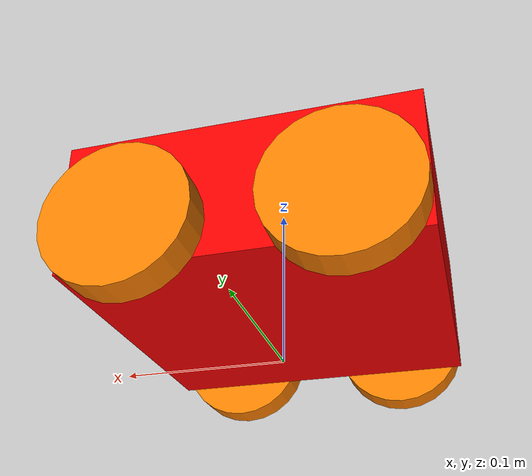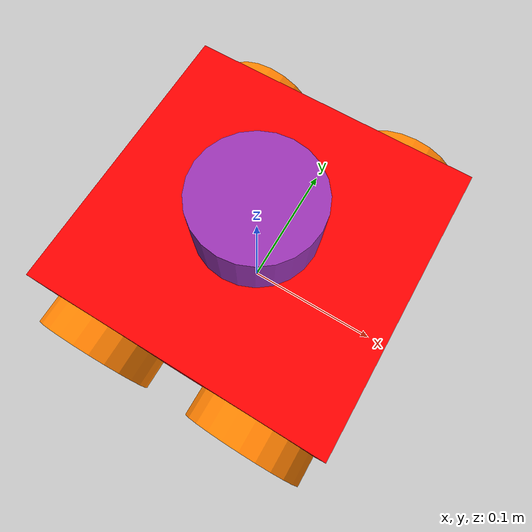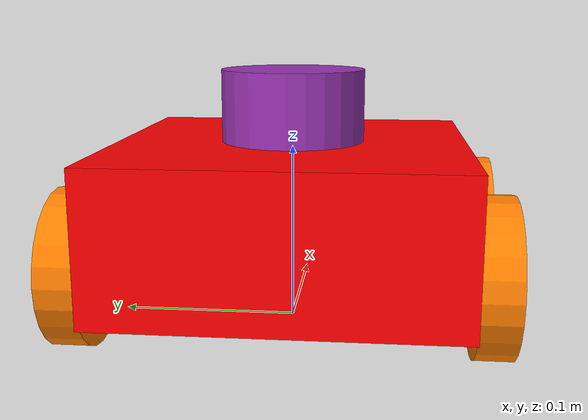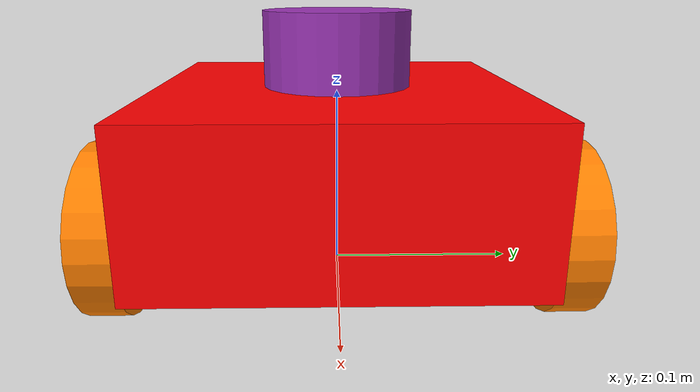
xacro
<?xml version="1.0"?>
<robot name="koala_bot" xmlns:xacro="http://ros.org/wiki/xacro">

  <xacro:include filename="$(find koala_description)/urdf/macros.xacro" />
  <xacro:include filename="$(find koala_description)/urdf/wheel.xacro" />
  <xacro:include filename="$(find koala_description)/urdf/colors.xacro" />
  <xacro:include filename="$(find koala_description)/urdf/lidar.xacro" />
  <xacro:include filename="$(find koala_description)/urdf/IMU.xacro" />

  <!-- Define robot constants -->
  <xacro:property name="base_width" value="0.194"/>
  <xacro:property name="base_length" value="0.200"/>
  <xacro:property name="base_height" value="0.081"/>
  <xacro:property name="base_mass" value="2.84"/>

  <xacro:property name="wheel_radius" value="0.042"/>
  <xacro:property name="wheel_width" value="0.020"/>
  <xacro:property name="wheel_ygap" value="0.00"/>
  <xacro:property name="wheel_zoff" value="-0.021"/>
  <xacro:property name="wheel_xoff" value="${wheel_radius}"/>
  <xacro:property name="wheel_mass" value="0.50"/>

  <xacro:property name="caster_xoff" value="0.00"/> <!-- distance between edge of caster to edge of base-->
  <xacro:property name="caster_mass" value="0.05"/>

<!-- Koala base :) -->
  <link name="body_link">
    <visual>
        <origin xyz="0.0 0.0 0.0" rpy="0.0 0.0 0.0"/>
        <geometry>
            <box size="${base_length} ${base_width} ${base_height}"/>
        </geometry>
        <material name="Red"/>
    </visual>
    <xacro:box_inertia m="${base_mass}" w="${base_length}" h="${base_width}" d="${base_height}"/>
    <collision>
      <origin xyz="0.0 0.0 0.0" rpy="0.0 0.0 0.0"/>
      <geometry>
        <box size="${base_length} ${base_width} ${base_height}"/>
      </geometry>

    </collision>
  </link>

<!-- Koala Footprint-->
  <link name="base_link"/>
  <joint name="base_joint" type="fixed">
    <parent link="base_link"/>
    <child link="body_link"/>
    <origin xyz="0.0 0.0 ${(wheel_radius-wheel_zoff)}" rpy="0 0 0"/>
  </joint>

<!-- Koala Wheels -->
  <xacro:wheel prefix="wheel_left_front" x_reflect="1" y_reflect="1" />
  <xacro:wheel prefix="wheel_right_front" x_reflect="1" y_reflect="-1" />
  <xacro:wheel prefix="wheel_left_rear" x_reflect="-1" y_reflect="1" />
  <xacro:wheel prefix="wheel_right_rear" x_reflect="-1" y_reflect="-1" />

  <!-- Koala lidar -->
  <xacro:lidar parent="body_link" x_pos="0.0" y_pos="0.0" z_pos="${base_height/2}" />

  <!-- Koala IMU -->
  <xacro:IMU parent="body_link" x_pos="0.0" y_pos="0.0" z_pos="${0}" />

  <!-- Gazebo simulation -->
  <gazebo>
    <plugin name='skid_steer_drive' filename='libgazebo_ros_diff_drive.so'>

      <update_rate>500</update_rate>
      <num_wheel_pairs>2</num_wheel_pairs>

      <left_joint>wheel_left_front_joint</left_joint>
      <right_joint>wheel_right_front_joint</right_joint>

      <left_joint>wheel_left_rear_joint</left_joint>
      <right_joint>wheel_right_rear_joint</right_joint>

      <wheel_separation>${base_width+2*wheel_ygap+wheel_width}</wheel_separation>
      <wheel_separation>${base_width+2*wheel_ygap+wheel_width}</wheel_separation>

      <wheel_diameter>${2*wheel_radius}</wheel_diameter>
      <wheel_diameter>${2*wheel_radius}</wheel_diameter>

      <max_wheel_torque>20</max_wheel_torque>
      <max_wheel_acceleration>1.0</max_wheel_acceleration>

      <publish_odom>true</publish_odom>
      <publish_odom_tf>false</publish_odom_tf>
      <publish_wheel_tf>true</publish_wheel_tf>

      <odometry_frame>odom</odometry_frame>
      <robot_base_frame>body_link</robot_base_frame>
    </plugin>
  </gazebo>
</robot>

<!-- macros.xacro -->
<robot name="koala_macros" xmlns:xacro="http://ros.org/wiki/xacro">
<!-- Define some commonly used intertial properties  -->
  <xacro:macro name="box_inertia" params="m w h d">
    <inertial>
      <origin xyz="0 0 0" rpy="0 0 0"/>
      <mass value="${m}"/>
      <inertia ixx="${(m/12) * (h*h + d*d)}" ixy="0.0" ixz="0.0" iyy="${(m/12) * (w*w + d*d)}" iyz="0.0" izz="${(m/12) * (w*w + h*h)}"/>
    </inertial>
  </xacro:macro>

  <xacro:macro name="cylinder_inertia" params="m r h roll">
    <inertial>
      <origin xyz="0 0 0" rpy="${roll} 0 0" />
      <mass value="${m}"/>
      <inertia ixx="${(m/12) * (3*r*r + h*h)}" ixy = "0" ixz = "0" iyy="${(m/12) * (3*r*r + h*h)}" iyz = "0" izz="${(m/2) * (r*r)}"/>
    </inertial>
  </xacro:macro>

  <xacro:macro name="sphere_inertia" params="m r">
    <inertial>
      <mass value="${m}"/>
      <inertia ixx="${(2/5) * m * (r*r)}" ixy="0.0" ixz="0.0" iyy="${(2/5) * m * (r*r)}" iyz="0.0" izz="${(2/5) * m * (r*r)}"/>
    </inertial>
  </xacro:macro>

</robot>

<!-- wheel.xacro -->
<robot name="koala_wheel" xmlns:xacro="http://ros.org/wiki/xacro">
  <xacro:macro name="wheel" params="prefix x_reflect y_reflect">
  <link name="${prefix}_link">
      <visual>
        <origin xyz="0 0 0" rpy="${pi/2} 0 0"/>
        <geometry>
            <cylinder radius="${wheel_radius}" length="${wheel_width}"/>
        </geometry>
        <material name="Orange"/>
      </visual>
      <xacro:cylinder_inertia m="${wheel_mass}" r="${wheel_radius}" h="${wheel_width}" roll="${pi/2}"/>
      <collision>
        <origin xyz="0 0 0" rpy="${pi/2} 0 0"/>
        <geometry>
          <cylinder radius="${wheel_radius}" length="${wheel_width}"/>
        </geometry>
      </collision>
    </link>

    <joint name="${prefix}_joint" type="continuous">
      <parent link="body_link"/>
      <child link="${prefix}_link"/>
      <origin xyz="${x_reflect*(base_length/2-wheel_xoff)} ${y_reflect*(base_width/2+wheel_ygap+wheel_width/2)} ${-base_height/2-wheel_zoff}" rpy="0 0 0"/>
      <axis xyz="0 1 0"/>
      <limit effort="1.5" velocity="24.0" />
      <dynamics damping="0.001" friction="0.001" />
    </joint>

  <gazebo reference="${prefix}_link">
    <collision>
          <surface>
            <friction>
              <ode>
                <mu>1</mu>
                <mu2>1</mu2>
                <slip1>0.035</slip1>
                <slip2>0</slip2>
                <fdir1>0 0 1</fdir1>
              </ode>
            </friction>
          </surface>
        </collision>
      <mu1 value="0.50"/>
      <mu2 value="3.0"/>
      <kp  value="10000000.0" />
      <kd  value="100.0" />
      <fdir1 value="0 0 1"/>
      <material>Gazebo/Black</material>
    </gazebo>
  </xacro:macro>
</robot>

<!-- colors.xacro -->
<robot xmlns:xacro="http://www.ros.org/wiki/xacro" name="colors_koala">

    <!-- Definicje kolorów -->
    <xacro:macro name="material_color" params="name r g b a">
        <material name="${name}">
            <color rgba="${r} ${g} ${b} ${a}"/>
        </material>
    </xacro:macro>

    <!-- Podstawowe kolory -->
    <xacro:material_color name="Red" r="1.0" g="0.0" b="0.0" a="1.0"/>
    <xacro:material_color name="Green" r="0.0" g="1.0" b="0.0" a="1.0"/>
    <xacro:material_color name="Blue" r="0.0" g="0.0" b="1.0" a="1.0"/>
    <xacro:material_color name="Yellow" r="1.0" g="1.0" b="0.0" a="1.0"/>
    <xacro:material_color name="Cyan" r="0.0" g="1.0" b="1.0" a="1.0"/>
    <xacro:material_color name="Magenta" r="1.0" g="0.0" b="1.0" a="1.0"/>
    <xacro:material_color name="White" r="1.0" g="1.0" b="1.0" a="1.0"/>
    <xacro:material_color name="Black" r="0.0" g="0.0" b="0.0" a="1.0"/>
    <xacro:material_color name="Gray" r="0.5" g="0.5" b="0.5" a="1.0"/>
    <xacro:material_color name="Orange" r="1.0" g="0.5" b="0.0" a="1.0"/>

</robot>

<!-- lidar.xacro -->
<robot name="koala_lidar" xmlns:xacro="http://ros.org/wiki/xacro">

<!-- The lidar macro is defined here -->
<xacro:property name="radius_lidar" value="0.04"/>
<xacro:property name="height_lidar" value="0.04"/>
<!-- The macro lidar is defined here -->
    <xacro:macro name="lidar" params="parent x_pos y_pos z_pos ">
        <link name="lidar_link">
            <visual>
            <geometry>
                <cylinder radius="${radius_lidar}" length="${height_lidar}"/>
            </geometry>
            </visual>
            <!-- Inertia properties -->
            <cylinder radius="${radius_lidar}" length="${height_lidar}"/>
            <!-- Collision properties -->
            <collision>
                <origin xyz="0 0 0" rpy="0 0 0"/>
                <geometry>
                    <cylinder radius="${radius_lidar}" length="${height_lidar}"/>
                </geometry>
            </collision>
        </link>
        <!-- Joint properties -->
        <joint name="lidar_joint" type="fixed">
            <parent link="${parent}"/>
            <child link="lidar_link"/>
            <origin xyz="${x_pos} ${y_pos} ${z_pos+height_lidar/2}" rpy="0 0 0"/>
        </joint>

        <!-- lidar properties -->
        <gazebo reference="lidar_link">
            <sensor name="koala_lidar" type="ray">
                <always_on>true</always_on>
                <update_rate>5</update_rate>
                <pose>0 0 0 0 0 0</pose>
                <ray>
                    <scan>
                        <horizontal>
                        <samples>1600</samples>
                        <resolution>1</resolution>
                        <min_angle>-${pi}</min_angle>
                        <max_angle>${pi}</max_angle>
                        </horizontal>
                    </scan>
                    <range>
                        <min>0.2</min>
                        <max>12</max>
                        <resolution>0.03</resolution>
                    </range>
                    <noise>
                        <type>gaussian</type>
                        <mean>0.0</mean>
                        <stddev>0.05</stddev>
                    </noise>
                </ray>
                <plugin name="lidar" filename="libgazebo_ros_ray_sensor.so">
                    <ros>
                        <argument>~/out:=scan</argument>
                    </ros>
                    <output_type>sensor_msgs/LaserScan</output_type>
                    <frame_name>lidar_link</frame_name>
                </plugin>
            </sensor>
            <!-- Material properties-->
            <material>Gazebo/Purple</material>
        </gazebo>
    </xacro:macro>
</robot>

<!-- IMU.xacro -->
<robot name="koala_IMU" xmlns:xacro="http://ros.org/wiki/xacro">

<!-- The macro camera is defined here -->
    <xacro:macro name="IMU" params="parent x_pos y_pos z_pos ">
        <link name="IMU_link"></link>
        <!-- Joint properties -->
        <joint name="IMU_joint" type="fixed">
            <parent link="${parent}"/>
            <child link="IMU_link"/>
            <origin xyz="${x_pos} ${y_pos} ${z_pos}" rpy="0 0 0"/>
        </joint>

        <!-- IMU properties -->
        <gazebo reference="IMU_link">
            <sensor name="koala_IMU" type="imu">
                <always_on>true</always_on>
                <update_rate>100</update_rate>
                <imu>
                    <angular_velocity>
                        <x>
                        <noise type="gaussian">
                            <mean>0.0</mean>
                            <stddev>2e-4</stddev>
                        </noise>
                        </x>
                        <y>
                        <noise type="gaussian">
                            <mean>0.0</mean>
                            <stddev>2e-4</stddev>
                        </noise>
                        </y>
                        <z>
                        <noise type="gaussian">
                            <mean>0.0</mean>
                            <stddev>2e-4</stddev>
                        </noise>
                        </z>
                    </angular_velocity>
                    <linear_acceleration>
                        <x>
                        <noise type="gaussian">
                            <mean>0.0</mean>
                            <stddev>1.7e-2</stddev>
                        </noise>
                        </x>
                        <y>
                        <noise type="gaussian">
                            <mean>0.0</mean>
                            <stddev>1.7e-2</stddev>
                        </noise>
                        </y>
                        <z>
                        <noise type="gaussian">
                            <mean>0.0</mean>
                            <stddev>1.7e-2</stddev>
                        </noise>
                        </z>
                    </linear_acceleration>
                    </imu>
                <plugin name="IMU_plugin" filename="libgazebo_ros_imu_sensor.so">
                    <ros>
                        <namespace>imu</namespace>
                        <remapping>~/out:=data</remapping>
                    </ros>
                    <initial_orientation_as_reference>false</initial_orientation_as_reference>
                </plugin>
            </sensor>
            <!-- Material properties-->
            <material>Gazebo/black</material>
        </gazebo>
    </xacro:macro>
</robot>
